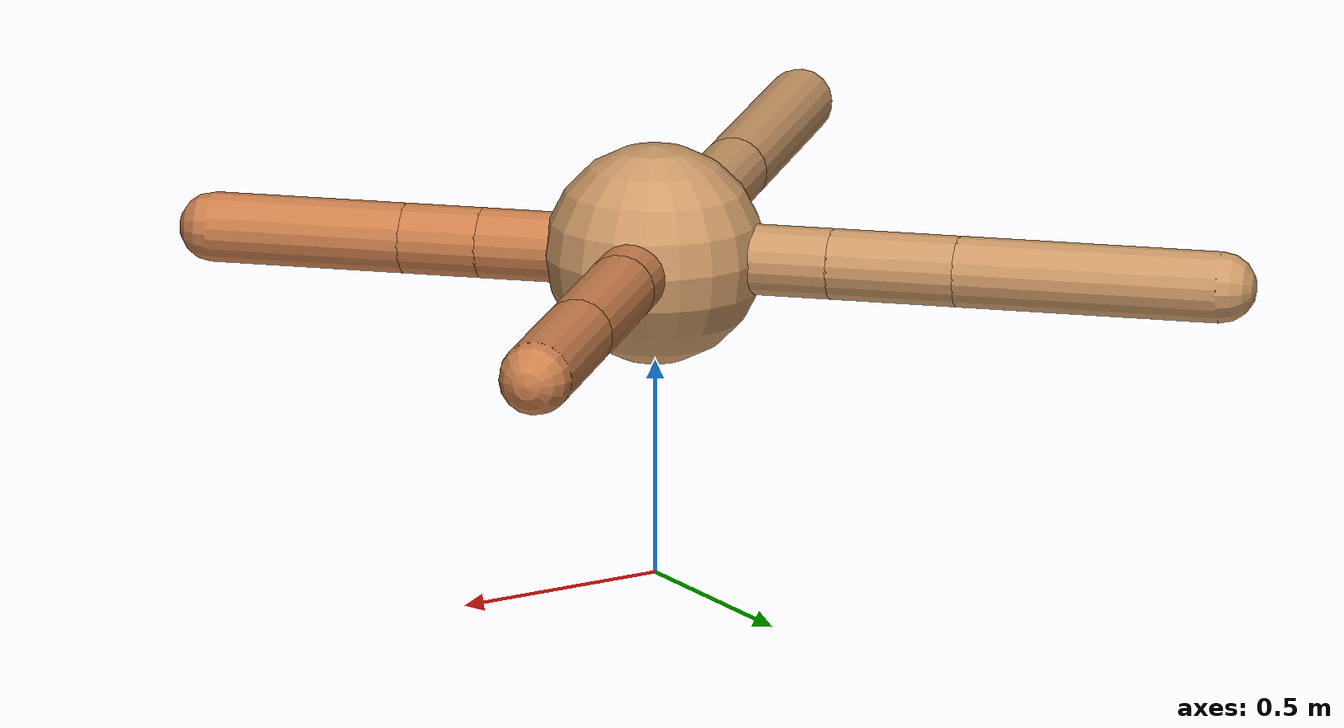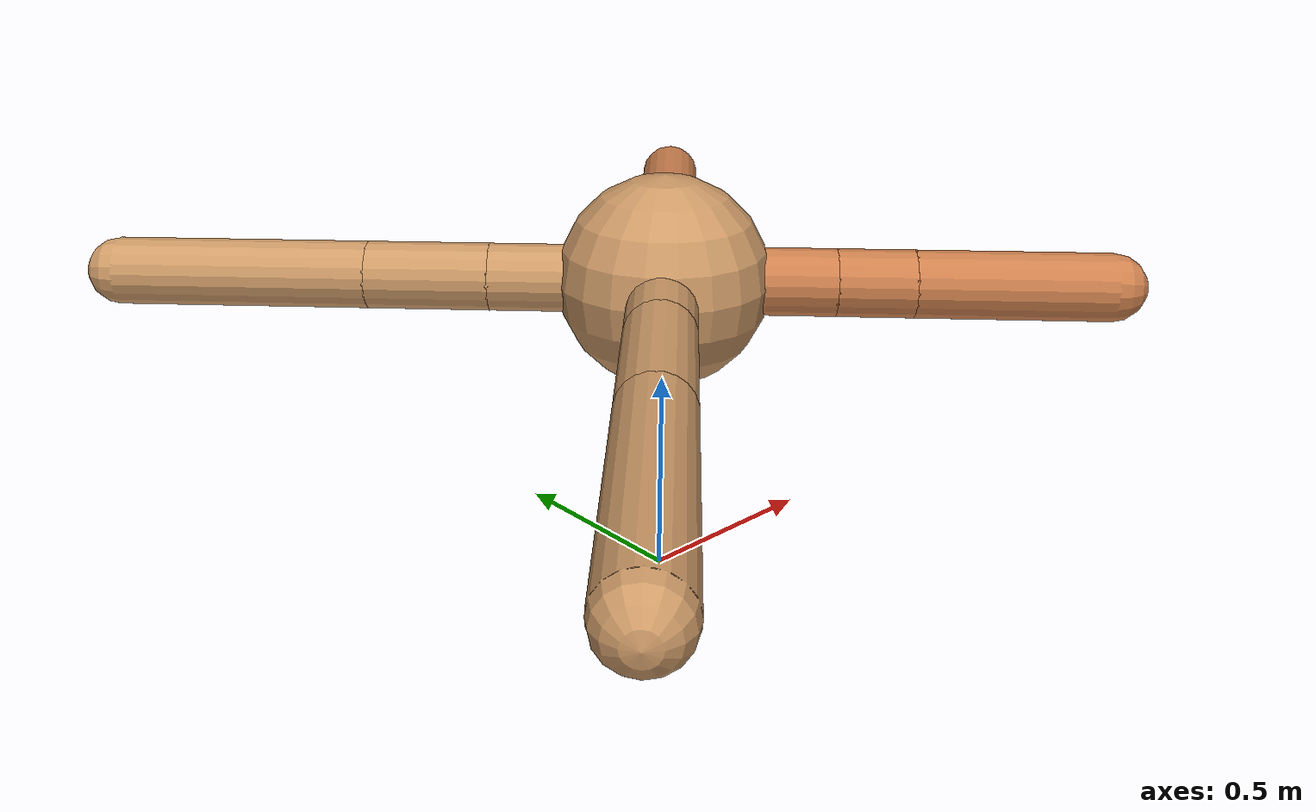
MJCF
<mujoco model="ant">
  <compiler angle="degree" coordinate="local" inertiafromgeom="true" />
  <option integrator="RK4" timestep="0.01" />
  <custom>
    <numeric data="0.0 0.0 0.55 1.0 0.0 0.0 0.0 0.0 1.0 0.0 -1.0 0.0 -1.0 0.0 1.0" name="init_qpos" />
  </custom>
  <default>
    <joint armature="1" damping="1" limited="true" />
    <geom conaffinity="0" condim="3" density="5.0" friction="1.5 0.1 0.1" margin="0.01" rgba="0.8 0.6 0.4 1" />
  </default>
  <worldbody>
    <body name="torso" pos="0 0 0.75">
      <geom name="torso_geom" pos="0 0 0" size="0.25" type="sphere" />

      <body name="front_left_leg" pos="0 0 0">
        <geom fromto="0.0 0.0 0.0 0.23291377956024972 0.23291377956024972 0.0" name="aux_1_geom" size="0.08" type="capsule" rgba=".8 .5 .3 1" />
        <body name="aux_1" pos="0.23291377956024972 0.23291377956024972 0.0">
          <joint axis="0 0 1" name="hip_1" pos="0.0 0.0 0.0" range="-40 40" type="hinge" />
          <geom fromto="0.0 0.0 0.0 0.27226220655586025 0.27226220655586025 0.0" name="left_leg_geom" size="0.08" type="capsule" rgba=".8 .5 .3 1" />
          <body pos="0.27226220655586025 0.27226220655586025 0.0" name="front_left_foot">
            <joint axis="-1 1 0" name="ankle_1" pos="0.0 0.0 0.0" range="30 100" type="hinge" />
            <geom fromto="0.0 0.0 0.0 0.25741124386722475 0.25741124386722475 0.0" name="left_ankle_geom" size="0.08" type="capsule" rgba=".8 .5 .3 1" />
          </body>
        </body>
      </body>
      <body name="front_right_leg" pos="0 0 0">
        <geom fromto="0.0 0.0 0.0 -0.28892098846431563 0.28892098846431563 0.0" name="aux_2_geom" size="0.08" type="capsule" />
        <body name="aux_2" pos="-0.28892098846431563 0.28892098846431563 0.0">
          <joint axis="0 0 1" name="hip_2" pos="0.0 0.0 0.0" range="-40 40" type="hinge" />
          <geom fromto="0.0 0.0 0.0 -0.20431455025307904 0.20431455025307904 0.0" name="right_leg_geom" size="0.08" type="capsule" />
          <body pos="-0.20431455025307904 0.20431455025307904 0.0" name="front_right_foot">
            <joint axis="1 1 0" name="ankle_2" pos="0.0 0.0 0.0" range="-100 -30" type="hinge" />
            <geom fromto="0.0 0.0 0.0 -0.42193281239402974 0.42193281239402974 0.0" name="right_ankle_geom" size="0.08" type="capsule" />
          </body>
        </body>
      </body>
      <body name="left_back_leg" pos="0 0 0">
        <geom fromto="0.0 0.0 0.0 -0.26634023443257765 -0.26634023443257765 0.0" name="aux_3_geom" size="0.08" type="capsule" />
        <body name="aux_3" pos="-0.26634023443257765 -0.26634023443257765 0.0">
          <joint axis="0 0 1" name="hip_3" pos="0.0 0.0 0.0" range="-40 40" type="hinge" />
          <geom fromto="0.0 0.0 0.0 -0.2797675378226409 -0.2797675378226409 0.0" name="back_leg_geom" size="0.08" type="capsule" />
          <body pos="-0.2797675378226409 -0.2797675378226409 0.0" name="left_back_foot">
            <joint axis="-1 1 0" name="ankle_3" pos="0.0 0.0 0.0" range="-100 -30" type="hinge" />
            <geom fromto="0.0 0.0 0.0 -0.48892978423632916 -0.48892978423632916 0.0" name="third_ankle_geom" size="0.08" type="capsule" />
          </body>
        </body>
      </body>
      <body name="right_back_leg" pos="0 0 0">
        <geom fromto="0.0 0.0 0.0 0.2836137198431959 -0.2836137198431959 0.0" name="aux_4_geom" size="0.08" type="capsule" rgba=".8 .5 .3 1" />
        <body name="aux_4" pos="0.2836137198431959 -0.2836137198431959 0.0">
          <joint axis="0 0 1" name="hip_4" pos="0.0 0.0 0.0" range="-40 40" type="hinge" />
          <geom fromto="0.0 0.0 0.0 0.12687399130542537 -0.12687399130542537 0.0" name="rightback_leg_geom" size="0.08" type="capsule" rgba=".8 .5 .3 1" />
          <body pos="0.12687399130542537 -0.12687399130542537 0.0" name="right_back_foot">
            <joint axis="1 1 0" name="ankle_4" pos="0.0 0.0 0.0" range="30 100" type="hinge" />
            <geom fromto="0.0 0.0 0.0 0.31910371396304427 -0.31910371396304427 0.0" name="fourth_ankle_geom" size="0.08" type="capsule" rgba=".8 .5 .3 1" />
          </body>
        </body>
      </body>
    </body>
  </worldbody>
  <actuator>
    <motor ctrllimited="true" ctrlrange="-1.0 1.0" joint="hip_4" gear="150" />
    <motor ctrllimited="true" ctrlrange="-1.0 1.0" joint="ankle_4" gear="150" />
    <motor ctrllimited="true" ctrlrange="-1.0 1.0" joint="hip_1" gear="150" />
    <motor ctrllimited="true" ctrlrange="-1.0 1.0" joint="ankle_1" gear="150" />
    <motor ctrllimited="true" ctrlrange="-1.0 1.0" joint="hip_2" gear="150" />
    <motor ctrllimited="true" ctrlrange="-1.0 1.0" joint="ankle_2" gear="150" />
    <motor ctrllimited="true" ctrlrange="-1.0 1.0" joint="hip_3" gear="150" />
    <motor ctrllimited="true" ctrlrange="-1.0 1.0" joint="ankle_3" gear="150" />
  </actuator>
</mujoco>
